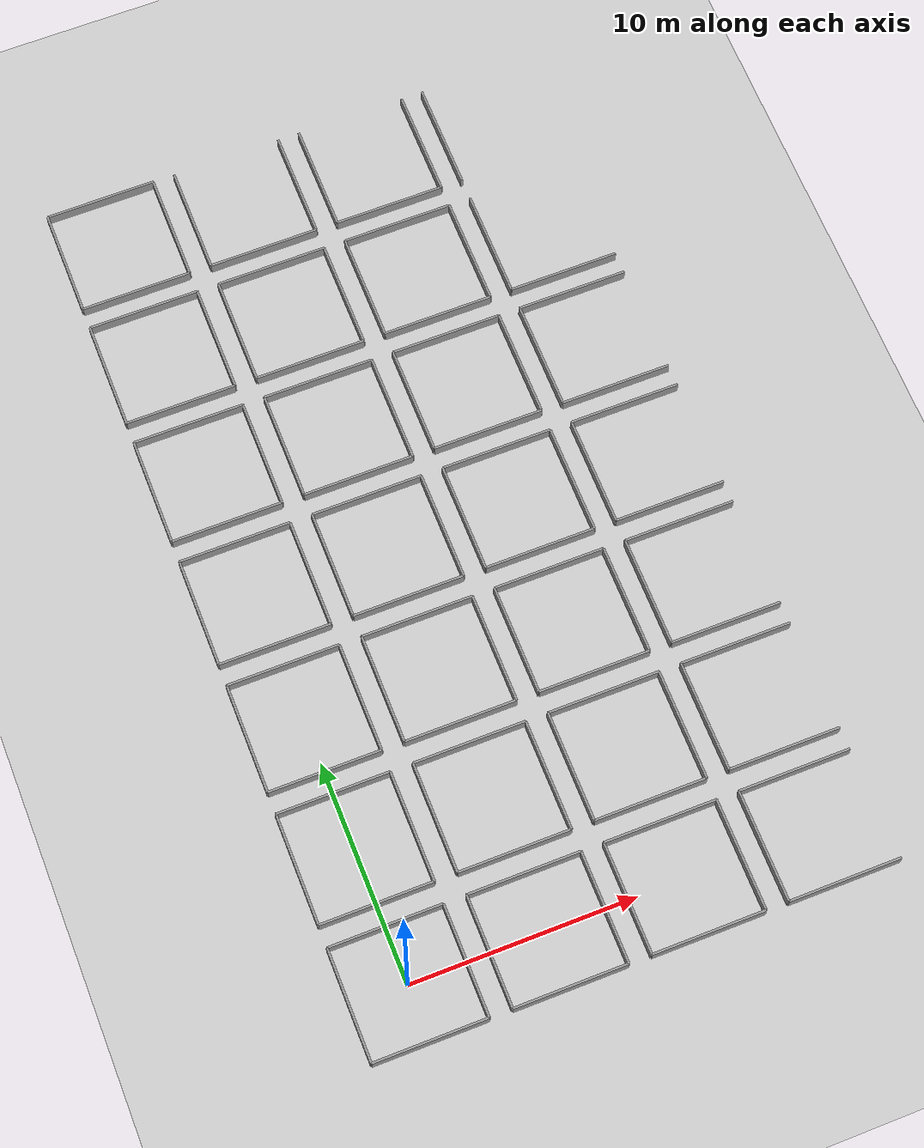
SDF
<sdf version="1.7">
 <world name="default">
  <include><uri>model://sun</uri></include>
  <model name="ground_plane">
   <static>true</static>
   <link name="link">
    <collision name="collision">
     <geometry><plane><normal>0 0 1</normal><size>100 100</size></plane></geometry>
    </collision>
    <visual name="visual">
     <geometry><plane><normal>0 0 1</normal><size>100 100</size></plane></geometry>
     <material>
      <script><uri>file://media/materials/scripts/gazebo.material</uri><name>Gazebo/Grey</name></script>
     </material>
    </visual>
   </link>
  </model>
  <model name="wall_0_north">
   <static>true</static>
   <pose>0 2.5 0 0 0 0</pose>
   <link name="link">
    <collision name="collision"><geometry><box><size>5 0.1 1</size></box></geometry></collision>
    <visual name="visual">
     <geometry><box><size>5 0.1 1</size></box></geometry>
     <material>
      <script><uri>file://media/materials/scripts/gazebo.material</uri><name>Gazebo/Grey</name></script>
     </material>
    </visual>
   </link>
  </model>
  <model name="wall_0_south">
   <static>true</static>
   <pose>0 -2.5 0 0 0 0</pose>
   <link name="link">
    <collision name="collision"><geometry><box><size>5 0.1 1</size></box></geometry></collision>
    <visual name="visual">
     <geometry><box><size>5 0.1 1</size></box></geometry>
     <material>
      <script><uri>file://media/materials/scripts/gazebo.material</uri><name>Gazebo/Grey</name></script>
     </material>
    </visual>
   </link>
  </model>
  <model name="wall_0_east">
   <static>true</static>
   <pose>2.5 0 0 0 0 1.5707</pose>
   <link name="link">
    <collision name="collision"><geometry><box><size>5 0.1 1</size></box></geometry></collision>
    <visual name="visual">
     <geometry><box><size>5 0.1 1</size></box></geometry>
     <material>
      <script><uri>file://media/materials/scripts/gazebo.material</uri><name>Gazebo/Grey</name></script>
     </material>
    </visual>
   </link>
  </model>
  <model name="wall_0_west">
   <static>true</static>
   <pose>-2.5 0 0 0 0 1.5707</pose>
   <link name="link">
    <collision name="collision"><geometry><box><size>5 0.1 1</size></box></geometry></collision>
    <visual name="visual">
     <geometry><box><size>5 0.1 1</size></box></geometry>
     <material>
      <script><uri>file://media/materials/scripts/gazebo.material</uri><name>Gazebo/Grey</name></script>
     </material>
    </visual>
   </link>
  </model>
  <model name="wall_1_north">
   <static>true</static>
   <pose>6 2.5 0 0 0 0</pose>
   <link name="link">
    <collision name="collision"><geometry><box><size>5 0.1 1</size></box></geometry></collision>
    <visual name="visual">
     <geometry><box><size>5 0.1 1</size></box></geometry>
     <material>
      <script><uri>file://media/materials/scripts/gazebo.material</uri><name>Gazebo/Grey</name></script>
     </material>
    </visual>
   </link>
  </model>
  <model name="wall_1_south">
   <static>true</static>
   <pose>6 -2.5 0 0 0 0</pose>
   <link name="link">
    <collision name="collision"><geometry><box><size>5 0.1 1</size></box></geometry></collision>
    <visual name="visual">
     <geometry><box><size>5 0.1 1</size></box></geometry>
     <material>
      <script><uri>file://media/materials/scripts/gazebo.material</uri><name>Gazebo/Grey</name></script>
     </material>
    </visual>
   </link>
  </model>
  <model name="wall_1_east">
   <static>true</static>
   <pose>8.5 0 0 0 0 1.5707</pose>
   <link name="link">
    <collision name="collision"><geometry><box><size>5 0.1 1</size></box></geometry></collision>
    <visual name="visual">
     <geometry><box><size>5 0.1 1</size></box></geometry>
     <material>
      <script><uri>file://media/materials/scripts/gazebo.material</uri><name>Gazebo/Grey</name></script>
     </material>
    </visual>
   </link>
  </model>
  <model name="wall_1_west">
   <static>true</static>
   <pose>3.5 0 0 0 0 1.5707</pose>
   <link name="link">
    <collision name="collision"><geometry><box><size>5 0.1 1</size></box></geometry></collision>
    <visual name="visual">
     <geometry><box><size>5 0.1 1</size></box></geometry>
     <material>
      <script><uri>file://media/materials/scripts/gazebo.material</uri><name>Gazebo/Grey</name></script>
     </material>
    </visual>
   </link>
  </model>
  <model name="wall_2_north">
   <static>true</static>
   <pose>12 2.5 0 0 0 0</pose>
   <link name="link">
    <collision name="collision"><geometry><box><size>5 0.1 1</size></box></geometry></collision>
    <visual name="visual">
     <geometry><box><size>5 0.1 1</size></box></geometry>
     <material>
      <script><uri>file://media/materials/scripts/gazebo.material</uri><name>Gazebo/Grey</name></script>
     </material>
    </visual>
   </link>
  </model>
  <model name="wall_2_south">
   <static>true</static>
   <pose>12 -2.5 0 0 0 0</pose>
   <link name="link">
    <collision name="collision"><geometry><box><size>5 0.1 1</size></box></geometry></collision>
    <visual name="visual">
     <geometry><box><size>5 0.1 1</size></box></geometry>
     <material>
      <script><uri>file://media/materials/scripts/gazebo.material</uri><name>Gazebo/Grey</name></script>
     </material>
    </visual>
   </link>
  </model>
  <model name="wall_2_east">
   <static>true</static>
   <pose>14.5 0 0 0 0 1.5707</pose>
   <link name="link">
    <collision name="collision"><geometry><box><size>5 0.1 1</size></box></geometry></collision>
    <visual name="visual">
     <geometry><box><size>5 0.1 1</size></box></geometry>
     <material>
      <script><uri>file://media/materials/scripts/gazebo.material</uri><name>Gazebo/Grey</name></script>
     </material>
    </visual>
   </link>
  </model>
  <model name="wall_2_west">
   <static>true</static>
   <pose>9.5 0 0 0 0 1.5707</pose>
   <link name="link">
    <collision name="collision"><geometry><box><size>5 0.1 1</size></box></geometry></collision>
    <visual name="visual">
     <geometry><box><size>5 0.1 1</size></box></geometry>
     <material>
      <script><uri>file://media/materials/scripts/gazebo.material</uri><name>Gazebo/Grey</name></script>
     </material>
    </visual>
   </link>
  </model>
  <model name="wall_3_north">
   <static>true</static>
   <pose>18 2.5 0 0 0 0</pose>
   <link name="link">
    <collision name="collision"><geometry><box><size>5 0.1 1</size></box></geometry></collision>
    <visual name="visual">
     <geometry><box><size>5 0.1 1</size></box></geometry>
     <material>
      <script><uri>file://media/materials/scripts/gazebo.material</uri><name>Gazebo/Grey</name></script>
     </material>
    </visual>
   </link>
  </model>
  <model name="wall_3_south">
   <static>true</static>
   <pose>18 -2.5 0 0 0 0</pose>
   <link name="link">
    <collision name="collision"><geometry><box><size>5 0.1 1</size></box></geometry></collision>
    <visual name="visual">
     <geometry><box><size>5 0.1 1</size></box></geometry>
     <material>
      <script><uri>file://media/materials/scripts/gazebo.material</uri><name>Gazebo/Grey</name></script>
     </material>
    </visual>
   </link>
  </model>
  <model name="wall_3_west">
   <static>true</static>
   <pose>15.5 0 0 0 0 1.5707</pose>
   <link name="link">
    <collision name="collision"><geometry><box><size>5 0.1 1</size></box></geometry></collision>
    <visual name="visual">
     <geometry><box><size>5 0.1 1</size></box></geometry>
     <material>
      <script><uri>file://media/materials/scripts/gazebo.material</uri><name>Gazebo/Grey</name></script>
     </material>
    </visual>
   </link>
  </model>
  <model name="wall_15_north">
   <static>true</static>
   <pose>0 8.5 0 0 0 0</pose>
   <link name="link">
    <collision name="collision"><geometry><box><size>5 0.1 1</size></box></geometry></collision>
    <visual name="visual">
     <geometry><box><size>5 0.1 1</size></box></geometry>
     <material>
      <script><uri>file://media/materials/scripts/gazebo.material</uri><name>Gazebo/Grey</name></script>
     </material>
    </visual>
   </link>
  </model>
  <model name="wall_15_south">
   <static>true</static>
   <pose>0 3.5 0 0 0 0</pose>
   <link name="link">
    <collision name="collision"><geometry><box><size>5 0.1 1</size></box></geometry></collision>
    <visual name="visual">
     <geometry><box><size>5 0.1 1</size></box></geometry>
     <material>
      <script><uri>file://media/materials/scripts/gazebo.material</uri><name>Gazebo/Grey</name></script>
     </material>
    </visual>
   </link>
  </model>
  <model name="wall_15_east">
   <static>true</static>
   <pose>2.5 6 0 0 0 1.5707</pose>
   <link name="link">
    <collision name="collision"><geometry><box><size>5 0.1 1</size></box></geometry></collision>
    <visual name="visual">
     <geometry><box><size>5 0.1 1</size></box></geometry>
     <material>
      <script><uri>file://media/materials/scripts/gazebo.material</uri><name>Gazebo/Grey</name></script>
     </material>
    </visual>
   </link>
  </model>
  <model name="wall_15_west">
   <static>true</static>
   <pose>-2.5 6 0 0 0 1.5707</pose>
   <link name="link">
    <collision name="collision"><geometry><box><size>5 0.1 1</size></box></geometry></collision>
    <visual name="visual">
     <geometry><box><size>5 0.1 1</size></box></geometry>
     <material>
      <script><uri>file://media/materials/scripts/gazebo.material</uri><name>Gazebo/Grey</name></script>
     </material>
    </visual>
   </link>
  </model>
  <model name="wall_16_north">
   <static>true</static>
   <pose>6 8.5 0 0 0 0</pose>
   <link name="link">
    <collision name="collision"><geometry><box><size>5 0.1 1</size></box></geometry></collision>
    <visual name="visual">
     <geometry><box><size>5 0.1 1</size></box></geometry>
     <material>
      <script><uri>file://media/materials/scripts/gazebo.material</uri><name>Gazebo/Grey</name></script>
     </material>
    </visual>
   </link>
  </model>
  <model name="wall_16_south">
   <static>true</static>
   <pose>6 3.5 0 0 0 0</pose>
   <link name="link">
    <collision name="collision"><geometry><box><size>5 0.1 1</size></box></geometry></collision>
    <visual name="visual">
     <geometry><box><size>5 0.1 1</size></box></geometry>
     <material>
      <script><uri>file://media/materials/scripts/gazebo.material</uri><name>Gazebo/Grey</name></script>
     </material>
    </visual>
   </link>
  </model>
  <model name="wall_16_east">
   <static>true</static>
   <pose>8.5 6 0 0 0 1.5707</pose>
   <link name="link">
    <collision name="collision"><geometry><box><size>5 0.1 1</size></box></geometry></collision>
    <visual name="visual">
     <geometry><box><size>5 0.1 1</size></box></geometry>
     <material>
      <script><uri>file://media/materials/scripts/gazebo.material</uri><name>Gazebo/Grey</name></script>
     </material>
    </visual>
   </link>
  </model>
  <model name="wall_16_west">
   <static>true</static>
   <pose>3.5 6 0 0 0 1.5707</pose>
   <link name="link">
    <collision name="collision"><geometry><box><size>5 0.1 1</size></box></geometry></collision>
    <visual name="visual">
     <geometry><box><size>5 0.1 1</size></box></geometry>
     <material>
      <script><uri>file://media/materials/scripts/gazebo.material</uri><name>Gazebo/Grey</name></script>
     </material>
    </visual>
   </link>
  </model>
  <model name="wall_17_north">
   <static>true</static>
   <pose>12 8.5 0 0 0 0</pose>
   <link name="link">
    <collision name="collision"><geometry><box><size>5 0.1 1</size></box></geometry></collision>
    <visual name="visual">
     <geometry><box><size>5 0.1 1</size></box></geometry>
     <material>
      <script><uri>file://media/materials/scripts/gazebo.material</uri><name>Gazebo/Grey</name></script>
     </material>
    </visual>
   </link>
  </model>
  <model name="wall_17_south">
   <static>true</static>
   <pose>12 3.5 0 0 0 0</pose>
   <link name="link">
    <collision name="collision"><geometry><box><size>5 0.1 1</size></box></geometry></collision>
    <visual name="visual">
     <geometry><box><size>5 0.1 1</size></box></geometry>
     <material>
      <script><uri>file://media/materials/scripts/gazebo.material</uri><name>Gazebo/Grey</name></script>
     </material>
    </visual>
   </link>
  </model>
  <model name="wall_17_east">
   <static>true</static>
   <pose>14.5 6 0 0 0 1.5707</pose>
   <link name="link">
    <collision name="collision"><geometry><box><size>5 0.1 1</size></box></geometry></collision>
    <visual name="visual">
     <geometry><box><size>5 0.1 1</size></box></geometry>
     <material>
      <script><uri>file://media/materials/scripts/gazebo.material</uri><name>Gazebo/Grey</name></script>
     </material>
    </visual>
   </link>
  </model>
  <model name="wall_17_west">
   <static>true</static>
   <pose>9.5 6 0 0 0 1.5707</pose>
   <link name="link">
    <collision name="collision"><geometry><box><size>5 0.1 1</size></box></geometry></collision>
    <visual name="visual">
     <geometry><box><size>5 0.1 1</size></box></geometry>
     <material>
      <script><uri>file://media/materials/scripts/gazebo.material</uri><name>Gazebo/Grey</name></script>
     </material>
    </visual>
   </link>
  </model>
  <model name="wall_18_north">
   <static>true</static>
   <pose>18 8.5 0 0 0 0</pose>
   <link name="link">
    <collision name="collision"><geometry><box><size>5 0.1 1</size></box></geometry></collision>
    <visual name="visual">
     <geometry><box><size>5 0.1 1</size></box></geometry>
     <material>
      <script><uri>file://media/materials/scripts/gazebo.material</uri><name>Gazebo/Grey</name></script>
     </material>
    </visual>
   </link>
  </model>
  <model name="wall_18_south">
   <static>true</static>
   <pose>18 3.5 0 0 0 0</pose>
   <link name="link">
    <collision name="collision"><geometry><box><size>5 0.1 1</size></box></geometry></collision>
    <visual name="visual">
     <geometry><box><size>5 0.1 1</size></box></geometry>
     <material>
      <script><uri>file://media/materials/scripts/gazebo.material</uri><name>Gazebo/Grey</name></script>
     </material>
    </visual>
   </link>
  </model>
  <model name="wall_18_west">
   <static>true</static>
   <pose>15.5 6 0 0 0 1.5707</pose>
   <link name="link">
    <collision name="collision"><geometry><box><size>5 0.1 1</size></box></geometry></collision>
    <visual name="visual">
     <geometry><box><size>5 0.1 1</size></box></geometry>
     <material>
      <script><uri>file://media/materials/scripts/gazebo.material</uri><name>Gazebo/Grey</name></script>
     </material>
    </visual>
   </link>
  </model>
  <model name="wall_30_north">
   <static>true</static>
   <pose>0 14.5 0 0 0 0</pose>
   <link name="link">
    <collision name="collision"><geometry><box><size>5 0.1 1</size></box></geometry></collision>
    <visual name="visual">
     <geometry><box><size>5 0.1 1</size></box></geometry>
     <material>
      <script><uri>file://media/materials/scripts/gazebo.material</uri><name>Gazebo/Grey</name></script>
     </material>
    </visual>
   </link>
  </model>
  <model name="wall_30_south">
   <static>true</static>
   <pose>0 9.5 0 0 0 0</pose>
   <link name="link">
    <collision name="collision"><geometry><box><size>5 0.1 1</size></box></geometry></collision>
    <visual name="visual">
     <geometry><box><size>5 0.1 1</size></box></geometry>
     <material>
      <script><uri>file://media/materials/scripts/gazebo.material</uri><name>Gazebo/Grey</name></script>
     </material>
    </visual>
   </link>
  </model>
  <model name="wall_30_east">
   <static>true</static>
   <pose>2.5 12 0 0 0 1.5707</pose>
   <link name="link">
    <collision name="collision"><geometry><box><size>5 0.1 1</size></box></geometry></collision>
    <visual name="visual">
     <geometry><box><size>5 0.1 1</size></box></geometry>
     <material>
      <script><uri>file://media/materials/scripts/gazebo.material</uri><name>Gazebo/Grey</name></script>
     </material>
    </visual>
   </link>
  </model>
  <model name="wall_30_west">
   <static>true</static>
   <pose>-2.5 12 0 0 0 1.5707</pose>
   <link name="link">
    <collision name="collision"><geometry><box><size>5 0.1 1</size></box></geometry></collision>
    <visual name="visual">
     <geometry><box><size>5 0.1 1</size></box></geometry>
     <material>
      <script><uri>file://media/materials/scripts/gazebo.material</uri><name>Gazebo/Grey</name></script>
     </material>
    </visual>
   </link>
  </model>
  <model name="wall_31_north">
   <static>true</static>
   <pose>6 14.5 0 0 0 0</pose>
   <link name="link">
    <collision name="collision"><geometry><box><size>5 0.1 1</size></box></geometry></collision>
    <visual name="visual">
     <geometry><box><size>5 0.1 1</size></box></geometry>
     <material>
      <script><uri>file://media/materials/scripts/gazebo.material</uri><name>Gazebo/Grey</name></script>
     </material>
    </visual>
   </link>
  </model>
  <model name="wall_31_south">
   <static>true</static>
   <pose>6 9.5 0 0 0 0</pose>
   <link name="link">
    <collision name="collision"><geometry><box><size>5 0.1 1</size></box></geometry></collision>
    <visual name="visual">
     <geometry><box><size>5 0.1 1</size></box></geometry>
     <material>
      <script><uri>file://media/materials/scripts/gazebo.material</uri><name>Gazebo/Grey</name></script>
     </material>
    </visual>
   </link>
  </model>
  <model name="wall_31_east">
   <static>true</static>
   <pose>8.5 12 0 0 0 1.5707</pose>
   <link name="link">
    <collision name="collision"><geometry><box><size>5 0.1 1</size></box></geometry></collision>
    <visual name="visual">
     <geometry><box><size>5 0.1 1</size></box></geometry>
     <material>
      <script><uri>file://media/materials/scripts/gazebo.material</uri><name>Gazebo/Grey</name></script>
     </material>
    </visual>
   </link>
  </model>
  <model name="wall_31_west">
   <static>true</static>
   <pose>3.5 12 0 0 0 1.5707</pose>
   <link name="link">
    <collision name="collision"><geometry><box><size>5 0.1 1</size></box></geometry></collision>
    <visual name="visual">
     <geometry><box><size>5 0.1 1</size></box></geometry>
     <material>
      <script><uri>file://media/materials/scripts/gazebo.material</uri><name>Gazebo/Grey</name></script>
     </material>
    </visual>
   </link>
  </model>
  <model name="wall_32_north">
   <static>true</static>
   <pose>12 14.5 0 0 0 0</pose>
   <link name="link">
    <collision name="collision"><geometry><box><size>5 0.1 1</size></box></geometry></collision>
    <visual name="visual">
     <geometry><box><size>5 0.1 1</size></box></geometry>
     <material>
      <script><uri>file://media/materials/scripts/gazebo.material</uri><name>Gazebo/Grey</name></script>
     </material>
    </visual>
   </link>
  </model>
  <model name="wall_32_south">
   <static>true</static>
   <pose>12 9.5 0 0 0 0</pose>
   <link name="link">
    <collision name="collision"><geometry><box><size>5 0.1 1</size></box></geometry></collision>
    <visual name="visual">
     <geometry><box><size>5 0.1 1</size></box></geometry>
     <material>
      <script><uri>file://media/materials/scripts/gazebo.material</uri><name>Gazebo/Grey</name></script>
     </material>
    </visual>
   </link>
  </model>
  <model name="wall_32_east">
   <static>true</static>
   <pose>14.5 12 0 0 0 1.5707</pose>
   <link name="link">
    <collision name="collision"><geometry><box><size>5 0.1 1</size></box></geometry></collision>
    <visual name="visual">
     <geometry><box><size>5 0.1 1</size></box></geometry>
     <material>
      <script><uri>file://media/materials/scripts/gazebo.material</uri><name>Gazebo/Grey</name></script>
     </material>
    </visual>
   </link>
  </model>
  <model name="wall_32_west">
   <static>true</static>
   <pose>9.5 12 0 0 0 1.5707</pose>
   <link name="link">
    <collision name="collision"><geometry><box><size>5 0.1 1</size></box></geometry></collision>
    <visual name="visual">
     <geometry><box><size>5 0.1 1</size></box></geometry>
     <material>
      <script><uri>file://media/materials/scripts/gazebo.material</uri><name>Gazebo/Grey</name></script>
     </material>
    </visual>
   </link>
  </model>
  <model name="wall_33_north">
   <static>true</static>
   <pose>18 14.5 0 0 0 0</pose>
   <link name="link">
    <collision name="collision"><geometry><box><size>5 0.1 1</size></box></geometry></collision>
    <visual name="visual">
     <geometry><box><size>5 0.1 1</size></box></geometry>
     <material>
      <script><uri>file://media/materials/scripts/gazebo.material</uri><name>Gazebo/Grey</name></script>
     </material>
    </visual>
   </link>
  </model>
  <model name="wall_33_south">
   <static>true</static>
   <pose>18 9.5 0 0 0 0</pose>
   <link name="link">
    <collision name="collision"><geometry><box><size>5 0.1 1</size></box></geometry></collision>
    <visual name="visual">
     <geometry><box><size>5 0.1 1</size></box></geometry>
     <material>
      <script><uri>file://media/materials/scripts/gazebo.material</uri><name>Gazebo/Grey</name></script>
     </material>
    </visual>
   </link>
  </model>
  <model name="wall_33_west">
   <static>true</static>
   <pose>15.5 12 0 0 0 1.5707</pose>
   <link name="link">
    <collision name="collision"><geometry><box><size>5 0.1 1</size></box></geometry></collision>
    <visual name="visual">
     <geometry><box><size>5 0.1 1</size></box></geometry>
     <material>
      <script><uri>file://media/materials/scripts/gazebo.material</uri><name>Gazebo/Grey</name></script>
     </material>
    </visual>
   </link>
  </model>
  <model name="wall_45_north">
   <static>true</static>
   <pose>0 20.5 0 0 0 0</pose>
   <link name="link">
    <collision name="collision"><geometry><box><size>5 0.1 1</size></box></geometry></collision>
    <visual name="visual">
     <geometry><box><size>5 0.1 1</size></box></geometry>
     <material>
      <script><uri>file://media/materials/scripts/gazebo.material</uri><name>Gazebo/Grey</name></script>
     </material>
    </visual>
   </link>
  </model>
  <model name="wall_45_south">
   <static>true</static>
   <pose>0 15.5 0 0 0 0</pose>
   <link name="link">
    <collision name="collision"><geometry><box><size>5 0.1 1</size></box></geometry></collision>
    <visual name="visual">
     <geometry><box><size>5 0.1 1</size></box></geometry>
     <material>
      <script><uri>file://media/materials/scripts/gazebo.material</uri><name>Gazebo/Grey</name></script>
     </material>
    </visual>
   </link>
  </model>
  <model name="wall_45_east">
   <static>true</static>
   <pose>2.5 18 0 0 0 1.5707</pose>
   <link name="link">
    <collision name="collision"><geometry><box><size>5 0.1 1</size></box></geometry></collision>
    <visual name="visual">
     <geometry><box><size>5 0.1 1</size></box></geometry>
     <material>
      <script><uri>file://media/materials/scripts/gazebo.material</uri><name>Gazebo/Grey</name></script>
     </material>
    </visual>
   </link>
  </model>
  <model name="wall_45_west">
   <static>true</static>
   <pose>-2.5 18 0 0 0 1.5707</pose>
   <link name="link">
    <collision name="collision"><geometry><box><size>5 0.1 1</size></box></geometry></collision>
    <visual name="visual">
     <geometry><box><size>5 0.1 1</size></box></geometry>
     <material>
      <script><uri>file://media/materials/scripts/gazebo.material</uri><name>Gazebo/Grey</name></script>
     </material>
    </visual>
   </link>
  </model>
  <model name="wall_46_north">
   <static>true</static>
   <pose>6 20.5 0 0 0 0</pose>
   <link name="link">
    <collision name="collision"><geometry><box><size>5 0.1 1</size></box></geometry></collision>
    <visual name="visual">
     <geometry><box><size>5 0.1 1</size></box></geometry>
     <material>
      <script><uri>file://media/materials/scripts/gazebo.material</uri><name>Gazebo/Grey</name></script>
     </material>
    </visual>
   </link>
  </model>
  <model name="wall_46_south">
   <static>true</static>
   <pose>6 15.5 0 0 0 0</pose>
   <link name="link">
    <collision name="collision"><geometry><box><size>5 0.1 1</size></box></geometry></collision>
    <visual name="visual">
     <geometry><box><size>5 0.1 1</size></box></geometry>
     <material>
      <script><uri>file://media/materials/scripts/gazebo.material</uri><name>Gazebo/Grey</name></script>
     </material>
    </visual>
   </link>
  </model>
  <model name="wall_46_east">
   <static>true</static>
   <pose>8.5 18 0 0 0 1.5707</pose>
   <link name="link">
    <collision name="collision"><geometry><box><size>5 0.1 1</size></box></geometry></collision>
    <visual name="visual">
     <geometry><box><size>5 0.1 1</size></box></geometry>
     <material>
      <script><uri>file://media/materials/scripts/gazebo.material</uri><name>Gazebo/Grey</name></script>
     </material>
    </visual>
   </link>
  </model>
  <model name="wall_46_west">
   <static>true</static>
   <pose>3.5 18 0 0 0 1.5707</pose>
   <link name="link">
    <collision name="collision"><geometry><box><size>5 0.1 1</size></box></geometry></collision>
    <visual name="visual">
     <geometry><box><size>5 0.1 1</size></box></geometry>
     <material>
      <script><uri>file://media/materials/scripts/gazebo.material</uri><name>Gazebo/Grey</name></script>
     </material>
    </visual>
   </link>
  </model>
  <model name="wall_47_north">
   <static>true</static>
   <pose>12 20.5 0 0 0 0</pose>
   <link name="link">
    <collision name="collision"><geometry><box><size>5 0.1 1</size></box></geometry></collision>
    <visual name="visual">
     <geometry><box><size>5 0.1 1</size></box></geometry>
     <material>
      <script><uri>file://media/materials/scripts/gazebo.material</uri><name>Gazebo/Grey</name></script>
     </material>
    </visual>
   </link>
  </model>
  <model name="wall_47_south">
   <static>true</static>
   <pose>12 15.5 0 0 0 0</pose>
   <link name="link">
    <collision name="collision"><geometry><box><size>5 0.1 1</size></box></geometry></collision>
    <visual name="visual">
     <geometry><box><size>5 0.1 1</size></box></geometry>
     <material>
      <script><uri>file://media/materials/scripts/gazebo.material</uri><name>Gazebo/Grey</name></script>
     </material>
    </visual>
   </link>
  </model>
  <model name="wall_47_east">
   <static>true</static>
   <pose>14.5 18 0 0 0 1.5707</pose>
   <link name="link">
    <collision name="collision"><geometry><box><size>5 0.1 1</size></box></geometry></collision>
    <visual name="visual">
     <geometry><box><size>5 0.1 1</size></box></geometry>
     <material>
      <script><uri>file://media/materials/scripts/gazebo.material</uri><name>Gazebo/Grey</name></script>
     </material>
    </visual>
   </link>
  </model>
  <model name="wall_47_west">
   <static>true</static>
   <pose>9.5 18 0 0 0 1.5707</pose>
   <link name="link">
    <collision name="collision"><geometry><box><size>5 0.1 1</size></box></geometry></collision>
    <visual name="visual">
     <geometry><box><size>5 0.1 1</size></box></geometry>
     <material>
      <script><uri>file://media/materials/scripts/gazebo.material</uri><name>Gazebo/Grey</name></script>
     </material>
    </visual>
   </link>
  </model>
  <model name="wall_48_north">
   <static>true</static>
   <pose>18 20.5 0 0 0 0</pose>
   <link name="link">
    <collision name="collision"><geometry><box><size>5 0.1 1</size></box></geometry></collision>
    <visual name="visual">
     <geometry><box><size>5 0.1 1</size></box></geometry>
     <material>
      <script><uri>file://media/materials/scripts/gazebo.material</uri><name>Gazebo/Grey</name></script>
     </material>
    </visual>
   </link>
  </model>
  <model name="wall_48_south">
   <static>true</static>
   <pose>18 15.5 0 0 0 0</pose>
   <link name="link">
    <collision name="collision"><geometry><box><size>5 0.1 1</size></box></geometry></collision>
    <visual name="visual">
     <geometry><box><size>5 0.1 1</size></box></geometry>
     <material>
      <script><uri>file://media/materials/scripts/gazebo.material</uri><name>Gazebo/Grey</name></script>
     </material>
    </visual>
   </link>
  </model>
  <model name="wall_48_west">
   <static>true</static>
   <pose>15.5 18 0 0 0 1.5707</pose>
   <link name="link">
    <collision name="collision"><geometry><box><size>5 0.1 1</size></box></geometry></collision>
    <visual name="visual">
     <geometry><box><size>5 0.1 1</size></box></geometry>
     <material>
      <script><uri>file://media/materials/scripts/gazebo.material</uri><name>Gazebo/Grey</name></script>
     </material>
    </visual>
   </link>
  </model>
  <model name="wall_60_north">
   <static>true</static>
   <pose>0 26.5 0 0 0 0</pose>
   <link name="link">
    <collision name="collision"><geometry><box><size>5 0.1 1</size></box></geometry></collision>
    <visual name="visual">
     <geometry><box><size>5 0.1 1</size></box></geometry>
     <material>
      <script><uri>file://media/materials/scripts/gazebo.material</uri><name>Gazebo/Grey</name></script>
     </material>
    </visual>
   </link>
  </model>
  <model name="wall_60_south">
   <static>true</static>
   <pose>0 21.5 0 0 0 0</pose>
   <link name="link">
    <collision name="collision"><geometry><box><size>5 0.1 1</size></box></geometry></collision>
    <visual name="visual">
     <geometry><box><size>5 0.1 1</size></box></geometry>
     <material>
      <script><uri>file://media/materials/scripts/gazebo.material</uri><name>Gazebo/Grey</name></script>
     </material>
    </visual>
   </link>
  </model>
  <model name="wall_60_east">
   <static>true</static>
   <pose>2.5 24 0 0 0 1.5707</pose>
   <link name="link">
    <collision name="collision"><geometry><box><size>5 0.1 1</size></box></geometry></collision>
    <visual name="visual">
     <geometry><box><size>5 0.1 1</size></box></geometry>
     <material>
      <script><uri>file://media/materials/scripts/gazebo.material</uri><name>Gazebo/Grey</name></script>
     </material>
    </visual>
   </link>
  </model>
  <model name="wall_60_west">
   <static>true</static>
   <pose>-2.5 24 0 0 0 1.5707</pose>
   <link name="link">
    <collision name="collision"><geometry><box><size>5 0.1 1</size></box></geometry></collision>
    <visual name="visual">
     <geometry><box><size>5 0.1 1</size></box></geometry>
     <material>
      <script><uri>file://media/materials/scripts/gazebo.material</uri><name>Gazebo/Grey</name></script>
     </material>
    </visual>
   </link>
  </model>
  <model name="wall_61_north">
   <static>true</static>
   <pose>6 26.5 0 0 0 0</pose>
   <link name="link">
    <collision name="collision"><geometry><box><size>5 0.1 1</size></box></geometry></collision>
    <visual name="visual">
     <geometry><box><size>5 0.1 1</size></box></geometry>
     <material>
      <script><uri>file://media/materials/scripts/gazebo.material</uri><name>Gazebo/Grey</name></script>
     </material>
    </visual>
   </link>
  </model>
  <model name="wall_61_south">
   <static>true</static>
   <pose>6 21.5 0 0 0 0</pose>
   <link name="link">
    <collision name="collision"><geometry><box><size>5 0.1 1</size></box></geometry></collision>
    <visual name="visual">
     <geometry><box><size>5 0.1 1</size></box></geometry>
     <material>
      <script><uri>file://media/materials/scripts/gazebo.material</uri><name>Gazebo/Grey</name></script>
     </material>
    </visual>
   </link>
  </model>
  <model name="wall_61_east">
   <static>true</static>
   <pose>8.5 24 0 0 0 1.5707</pose>
   <link name="link">
    <collision name="collision"><geometry><box><size>5 0.1 1</size></box></geometry></collision>
    <visual name="visual">
     <geometry><box><size>5 0.1 1</size></box></geometry>
     <material>
      <script><uri>file://media/materials/scripts/gazebo.material</uri><name>Gazebo/Grey</name></script>
     </material>
    </visual>
   </link>
  </model>
  <model name="wall_61_west">
   <static>true</static>
   <pose>3.5 24 0 0 0 1.5707</pose>
   <link name="link">
    <collision name="collision"><geometry><box><size>5 0.1 1</size></box></geometry></collision>
    <visual name="visual">
     <geometry><box><size>5 0.1 1</size></box></geometry>
     <material>
      <script><uri>file://media/materials/scripts/gazebo.material</uri><name>Gazebo/Grey</name></script>
     </material>
    </visual>
   </link>
  </model>
  <model name="wall_62_north">
   <static>true</static>
   <pose>12 26.5 0 0 0 0</pose>
   <link name="link">
    <collision name="collision"><geometry><box><size>5 0.1 1</size></box></geometry></collision>
    <visual name="visual">
     <geometry><box><size>5 0.1 1</size></box></geometry>
     <material>
      <script><uri>file://media/materials/scripts/gazebo.material</uri><name>Gazebo/Grey</name></script>
     </material>
    </visual>
   </link>
  </model>
  <model name="wall_62_south">
   <static>true</static>
   <pose>12 21.5 0 0 0 0</pose>
   <link name="link">
    <collision name="collision"><geometry><box><size>5 0.1 1</size></box></geometry></collision>
    <visual name="visual">
     <geometry><box><size>5 0.1 1</size></box></geometry>
     <material>
      <script><uri>file://media/materials/scripts/gazebo.material</uri><name>Gazebo/Grey</name></script>
     </material>
    </visual>
   </link>
  </model>
  <model name="wall_62_east">
   <static>true</static>
   <pose>14.5 24 0 0 0 1.5707</pose>
   <link name="link">
    <collision name="collision"><geometry><box><size>5 0.1 1</size></box></geometry></collision>
    <visual name="visual">
     <geometry><box><size>5 0.1 1</size></box></geometry>
     <material>
      <script><uri>file://media/materials/scripts/gazebo.material</uri><name>Gazebo/Grey</name></script>
     </material>
    </visual>
   </link>
  </model>
  <model name="wall_62_west">
   <static>true</static>
   <pose>9.5 24 0 0 0 1.5707</pose>
   <link name="link">
    <collision name="collision"><geometry><box><size>5 0.1 1</size></box></geometry></collision>
    <visual name="visual">
     <geometry><box><size>5 0.1 1</size></box></geometry>
     <material>
      <script><uri>file://media/materials/scripts/gazebo.material</uri><name>Gazebo/Grey</name></script>
     </material>
    </visual>
   </link>
  </model>
  <model name="wall_63_north">
   <static>true</static>
   <pose>18 26.5 0 0 0 0</pose>
   <link name="link">
    <collision name="collision"><geometry><box><size>5 0.1 1</size></box></geometry></collision>
    <visual name="visual">
     <geometry><box><size>5 0.1 1</size></box></geometry>
     <material>
      <script><uri>file://media/materials/scripts/gazebo.material</uri><name>Gazebo/Grey</name></script>
     </material>
    </visual>
   </link>
  </model>
  <model name="wall_63_south">
   <static>true</static>
   <pose>18 21.5 0 0 0 0</pose>
   <link name="link">
    <collision name="collision"><geometry><box><size>5 0.1 1</size></box></geometry></collision>
    <visual name="visual">
     <geometry><box><size>5 0.1 1</size></box></geometry>
     <material>
      <script><uri>file://media/materials/scripts/gazebo.material</uri><name>Gazebo/Grey</name></script>
     </material>
    </visual>
   </link>
  </model>
  <model name="wall_63_west">
   <static>true</static>
   <pose>15.5 24 0 0 0 1.5707</pose>
   <link name="link">
    <collision name="collision"><geometry><box><size>5 0.1 1</size></box></geometry></collision>
    <visual name="visual">
     <geometry><box><size>5 0.1 1</size></box></geometry>
     <material>
      <script><uri>file://media/materials/scripts/gazebo.material</uri><name>Gazebo/Grey</name></script>
     </material>
    </visual>
   </link>
  </model>
  <model name="wall_75_north">
   <static>true</static>
   <pose>0 32.5 0 0 0 0</pose>
   <link name="link">
    <collision name="collision"><geometry><box><size>5 0.1 1</size></box></geometry></collision>
    <visual name="visual">
     <geometry><box><size>5 0.1 1</size></box></geometry>
     <material>
      <script><uri>file://media/materials/scripts/gazebo.material</uri><name>Gazebo/Grey</name></script>
     </material>
    </visual>
   </link>
  </model>
  <model name="wall_75_south">
   <static>true</static>
   <pose>0 27.5 0 0 0 0</pose>
   <link name="link">
    <collision name="collision"><geometry><box><size>5 0.1 1</size></box></geometry></collision>
    <visual name="visual">
     <geometry><box><size>5 0.1 1</size></box></geometry>
     <material>
      <script><uri>file://media/materials/scripts/gazebo.material</uri><name>Gazebo/Grey</name></script>
     </material>
    </visual>
   </link>
  </model>
  <model name="wall_75_east">
   <static>true</static>
   <pose>2.5 30 0 0 0 1.5707</pose>
   <link name="link">
    <collision name="collision"><geometry><box><size>5 0.1 1</size></box></geometry></collision>
    <visual name="visual">
     <geometry><box><size>5 0.1 1</size></box></geometry>
     <material>
      <script><uri>file://media/materials/scripts/gazebo.material</uri><name>Gazebo/Grey</name></script>
     </material>
    </visual>
   </link>
  </model>
  <model name="wall_75_west">
   <static>true</static>
   <pose>-2.5 30 0 0 0 1.5707</pose>
   <link name="link">
    <collision name="collision"><geometry><box><size>5 0.1 1</size></box></geometry></collision>
    <visual name="visual">
     <geometry><box><size>5 0.1 1</size></box></geometry>
     <material>
      <script><uri>file://media/materials/scripts/gazebo.material</uri><name>Gazebo/Grey</name></script>
     </material>
    </visual>
   </link>
  </model>
  <model name="wall_76_north">
   <static>true</static>
   <pose>6 32.5 0 0 0 0</pose>
   <link name="link">
    <collision name="collision"><geometry><box><size>5 0.1 1</size></box></geometry></collision>
    <visual name="visual">
     <geometry><box><size>5 0.1 1</size></box></geometry>
     <material>
      <script><uri>file://media/materials/scripts/gazebo.material</uri><name>Gazebo/Grey</name></script>
     </material>
    </visual>
   </link>
  </model>
  <model name="wall_76_south">
   <static>true</static>
   <pose>6 27.5 0 0 0 0</pose>
   <link name="link">
    <collision name="collision"><geometry><box><size>5 0.1 1</size></box></geometry></collision>
    <visual name="visual">
     <geometry><box><size>5 0.1 1</size></box></geometry>
     <material>
      <script><uri>file://media/materials/scripts/gazebo.material</uri><name>Gazebo/Grey</name></script>
     </material>
    </visual>
   </link>
  </model>
  <model name="wall_76_east">
   <static>true</static>
   <pose>8.5 30 0 0 0 1.5707</pose>
   <link name="link">
    <collision name="collision"><geometry><box><size>5 0.1 1</size></box></geometry></collision>
    <visual name="visual">
     <geometry><box><size>5 0.1 1</size></box></geometry>
     <material>
      <script><uri>file://media/materials/scripts/gazebo.material</uri><name>Gazebo/Grey</name></script>
     </material>
    </visual>
   </link>
  </model>
  <model name="wall_76_west">
   <static>true</static>
   <pose>3.5 30 0 0 0 1.5707</pose>
   <link name="link">
    <collision name="collision"><geometry><box><size>5 0.1 1</size></box></geometry></collision>
    <visual name="visual">
     <geometry><box><size>5 0.1 1</size></box></geometry>
     <material>
      <script><uri>file://media/materials/scripts/gazebo.material</uri><name>Gazebo/Grey</name></script>
     </material>
    </visual>
   </link>
  </model>
  <model name="wall_77_north">
   <static>true</static>
   <pose>12 32.5 0 0 0 0</pose>
   <link name="link">
    <collision name="collision"><geometry><box><size>5 0.1 1</size></box></geometry></collision>
    <visual name="visual">
     <geometry><box><size>5 0.1 1</size></box></geometry>
     <material>
      <script><uri>file://media/materials/scripts/gazebo.material</uri><name>Gazebo/Grey</name></script>
     </material>
    </visual>
   </link>
  </model>
  <model name="wall_77_south">
   <static>true</static>
   <pose>12 27.5 0 0 0 0</pose>
   <link name="link">
    <collision name="collision"><geometry><box><size>5 0.1 1</size></box></geometry></collision>
    <visual name="visual">
     <geometry><box><size>5 0.1 1</size></box></geometry>
     <material>
      <script><uri>file://media/materials/scripts/gazebo.material</uri><name>Gazebo/Grey</name></script>
     </material>
    </visual>
   </link>
  </model>
  <model name="wall_77_east">
   <static>true</static>
   <pose>14.5 30 0 0 0 1.5707</pose>
   <link name="link">
    <collision name="collision"><geometry><box><size>5 0.1 1</size></box></geometry></collision>
    <visual name="visual">
     <geometry><box><size>5 0.1 1</size></box></geometry>
     <material>
      <script><uri>file://media/materials/scripts/gazebo.material</uri><name>Gazebo/Grey</name></script>
     </material>
    </visual>
   </link>
  </model>
  <model name="wall_77_west">
   <static>true</static>
   <pose>9.5 30 0 0 0 1.5707</pose>
   <link name="link">
    <collision name="collision"><geometry><box><size>5 0.1 1</size></box></geometry></collision>
    <visual name="visual">
     <geometry><box><size>5 0.1 1</size></box></geometry>
     <material>
      <script><uri>file://media/materials/scripts/gazebo.material</uri><name>Gazebo/Grey</name></script>
     </material>
    </visual>
   </link>
  </model>
  <model name="wall_78_south">
   <static>true</static>
   <pose>18 27.5 0 0 0 0</pose>
   <link name="link">
    <collision name="collision"><geometry><box><size>5 0.1 1</size></box></geometry></collision>
    <visual name="visual">
     <geometry><box><size>5 0.1 1</size></box></geometry>
     <material>
      <script><uri>file://media/materials/scripts/gazebo.material</uri><name>Gazebo/Grey</name></script>
     </material>
    </visual>
   </link>
  </model>
  <model name="wall_78_west">
   <static>true</static>
   <pose>15.5 30 0 0 0 1.5707</pose>
   <link name="link">
    <collision name="collision"><geometry><box><size>5 0.1 1</size></box></geometry></collision>
    <visual name="visual">
     <geometry><box><size>5 0.1 1</size></box></geometry>
     <material>
      <script><uri>file://media/materials/scripts/gazebo.material</uri><name>Gazebo/Grey</name></script>
     </material>
    </visual>
   </link>
  </model>
  <model name="wall_90_north">
   <static>true</static>
   <pose>0 38.5 0 0 0 0</pose>
   <link name="link">
    <collision name="collision"><geometry><box><size>5 0.1 1</size></box></geometry></collision>
    <visual name="visual">
     <geometry><box><size>5 0.1 1</size></box></geometry>
     <material>
      <script><uri>file://media/materials/scripts/gazebo.material</uri><name>Gazebo/Grey</name></script>
     </material>
    </visual>
   </link>
  </model>
  <model name="wall_90_south">
   <static>true</static>
   <pose>0 33.5 0 0 0 0</pose>
   <link name="link">
    <collision name="collision"><geometry><box><size>5 0.1 1</size></box></geometry></collision>
    <visual name="visual">
     <geometry><box><size>5 0.1 1</size></box></geometry>
     <material>
      <script><uri>file://media/materials/scripts/gazebo.material</uri><name>Gazebo/Grey</name></script>
     </material>
    </visual>
   </link>
  </model>
  <model name="wall_90_east">
   <static>true</static>
   <pose>2.5 36 0 0 0 1.5707</pose>
   <link name="link">
    <collision name="collision"><geometry><box><size>5 0.1 1</size></box></geometry></collision>
    <visual name="visual">
     <geometry><box><size>5 0.1 1</size></box></geometry>
     <material>
      <script><uri>file://media/materials/scripts/gazebo.material</uri><name>Gazebo/Grey</name></script>
     </material>
    </visual>
   </link>
  </model>
  <model name="wall_90_west">
   <static>true</static>
   <pose>-2.5 36 0 0 0 1.5707</pose>
   <link name="link">
    <collision name="collision"><geometry><box><size>5 0.1 1</size></box></geometry></collision>
    <visual name="visual">
     <geometry><box><size>5 0.1 1</size></box></geometry>
     <material>
      <script><uri>file://media/materials/scripts/gazebo.material</uri><name>Gazebo/Grey</name></script>
     </material>
    </visual>
   </link>
  </model>
  <model name="wall_91_south">
   <static>true</static>
   <pose>6 33.5 0 0 0 0</pose>
   <link name="link">
    <collision name="collision"><geometry><box><size>5 0.1 1</size></box></geometry></collision>
    <visual name="visual">
     <geometry><box><size>5 0.1 1</size></box></geometry>
     <material>
      <script><uri>file://media/materials/scripts/gazebo.material</uri><name>Gazebo/Grey</name></script>
     </material>
    </visual>
   </link>
  </model>
  <model name="wall_91_east">
   <static>true</static>
   <pose>8.5 36 0 0 0 1.5707</pose>
   <link name="link">
    <collision name="collision"><geometry><box><size>5 0.1 1</size></box></geometry></collision>
    <visual name="visual">
     <geometry><box><size>5 0.1 1</size></box></geometry>
     <material>
      <script><uri>file://media/materials/scripts/gazebo.material</uri><name>Gazebo/Grey</name></script>
     </material>
    </visual>
   </link>
  </model>
  <model name="wall_91_west">
   <static>true</static>
   <pose>3.5 36 0 0 0 1.5707</pose>
   <link name="link">
    <collision name="collision"><geometry><box><size>5 0.1 1</size></box></geometry></collision>
    <visual name="visual">
     <geometry><box><size>5 0.1 1</size></box></geometry>
     <material>
      <script><uri>file://media/materials/scripts/gazebo.material</uri><name>Gazebo/Grey</name></script>
     </material>
    </visual>
   </link>
  </model>
  <model name="wall_92_south">
   <static>true</static>
   <pose>12 33.5 0 0 0 0</pose>
   <link name="link">
    <collision name="collision"><geometry><box><size>5 0.1 1</size></box></geometry></collision>
    <visual name="visual">
     <geometry><box><size>5 0.1 1</size></box></geometry>
     <material>
      <script><uri>file://media/materials/scripts/gazebo.material</uri><name>Gazebo/Grey</name></script>
     </material>
    </visual>
   </link>
  </model>
  <model name="wall_92_east">
   <static>true</static>
   <pose>14.5 36 0 0 0 1.5707</pose>
   <link name="link">
    <collision name="collision"><geometry><box><size>5 0.1 1</size></box></geometry></collision>
    <visual name="visual">
     <geometry><box><size>5 0.1 1</size></box></geometry>
     <material>
      <script><uri>file://media/materials/scripts/gazebo.material</uri><name>Gazebo/Grey</name></script>
     </material>
    </visual>
   </link>
  </model>
  <model name="wall_92_west">
   <static>true</static>
   <pose>9.5 36 0 0 0 1.5707</pose>
   <link name="link">
    <collision name="collision"><geometry><box><size>5 0.1 1</size></box></geometry></collision>
    <visual name="visual">
     <geometry><box><size>5 0.1 1</size></box></geometry>
     <material>
      <script><uri>file://media/materials/scripts/gazebo.material</uri><name>Gazebo/Grey</name></script>
     </material>
    </visual>
   </link>
  </model>
  <model name="wall_93_west">
   <static>true</static>
   <pose>15.5 36 0 0 0 1.5707</pose>
   <link name="link">
    <collision name="collision"><geometry><box><size>5 0.1 1</size></box></geometry></collision>
    <visual name="visual">
     <geometry><box><size>5 0.1 1</size></box></geometry>
     <material>
      <script><uri>file://media/materials/scripts/gazebo.material</uri><name>Gazebo/Grey</name></script>
     </material>
    </visual>
   </link>
  </model>
 </world>
</sdf>
